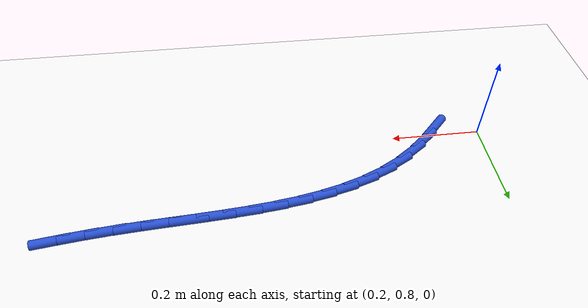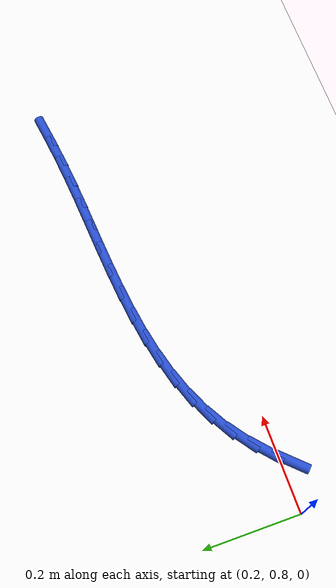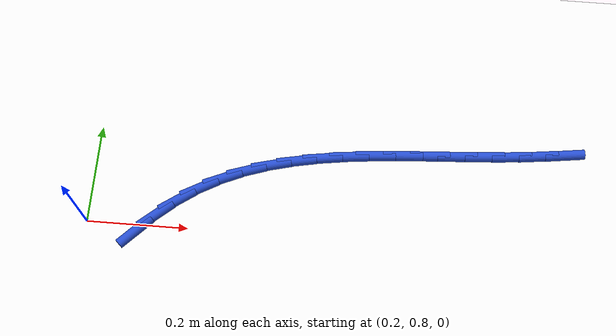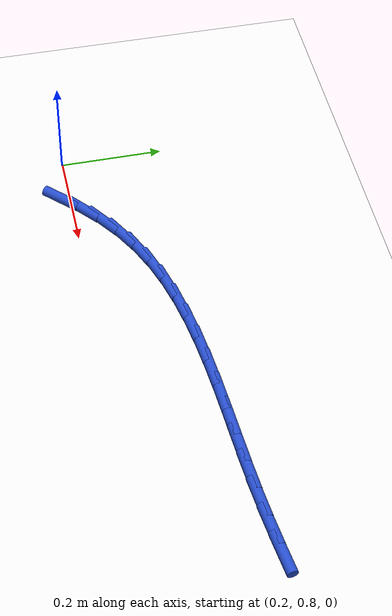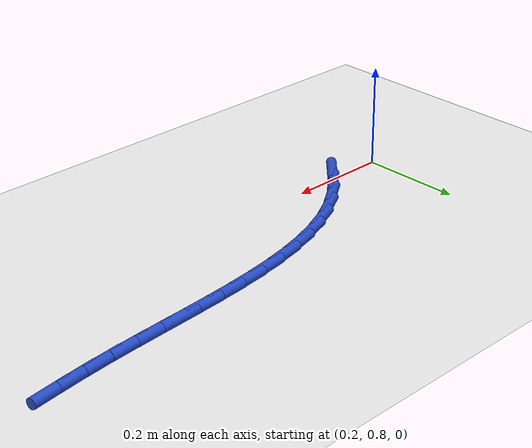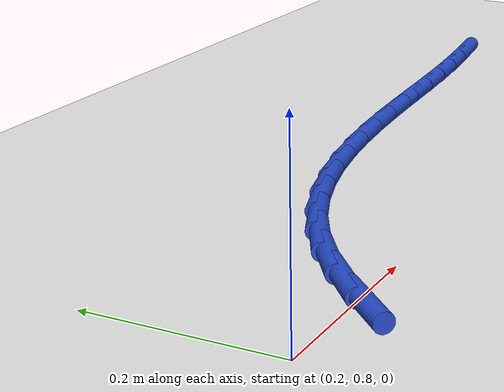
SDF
<sdf version="1.6">
 <world name="default">
  <model name="ground_plane">
   <static>1</static>
   <link name="link">
    <collision name="collision">
     <geometry><plane><normal>0 0 1</normal><size>100 100</size></plane></geometry>
     <surface><friction><ode><mu>100</mu><mu2>50</mu2></ode></friction></surface>
    </collision>
    <visual name="visual">
     <cast_shadows>0</cast_shadows>
     <geometry><plane><normal>0 0 1</normal><size>100 100</size></plane></geometry>
     <material>
      <script><uri>file://media/materials/scripts/gazebo.material</uri><name>Gazebo/WhiteGlow</name></script>
     </material>
    </visual>
   </link>
  </model>
  <model name="line">
   <link name="link_16">
    <pose>0.299323625582024 0.7838073324594245 0.01 0 1.57 0.8024193321833599</pose>
    <collision name="collision">
     <geometry><cylinder><radius>0.01</radius><length>0.08</length></cylinder></geometry>
    </collision>
    <visual name="visual">
     <material>
      <script><name>Gazebo/Blue</name><uri>file://media/materials/scripts/gazebo.material</uri></script>
     </material>
     <geometry><cylinder><radius>0.01</radius><length>0.08</length></cylinder></geometry>
    </visual>
   </link>
   <link name="link_17">
    <pose>0.3349986166947402 0.8207179345346696 0.01 0 1.57 0.7150534925548987</pose>
    <collision name="collision">
     <geometry><cylinder><radius>0.01</radius><length>0.08</length></cylinder></geometry>
    </collision>
    <visual name="visual">
     <material>
      <script><name>Gazebo/Blue</name><uri>file://media/materials/scripts/gazebo.material</uri></script>
     </material>
     <geometry><cylinder><radius>0.01</radius><length>0.08</length></cylinder></geometry>
    </visual>
   </link>
   <link name="link_18">
    <pose>0.37311906047748816 0.8538199756840446 0.01 0 1.57 0.6165033880333615</pose>
    <collision name="collision">
     <geometry><cylinder><radius>0.01</radius><length>0.08</length></cylinder></geometry>
    </collision>
    <visual name="visual">
     <material>
      <script><name>Gazebo/Blue</name><uri>file://media/materials/scripts/gazebo.material</uri></script>
     </material>
     <geometry><cylinder><radius>0.01</radius><length>0.08</length></cylinder></geometry>
    </visual>
   </link>
   <link name="link_19">
    <pose>0.41379451248282906 0.8826443668208552 0.01 0 1.57 0.5097273781721162</pose>
    <collision name="collision">
     <geometry><cylinder><radius>0.01</radius><length>0.08</length></cylinder></geometry>
    </collision>
    <visual name="visual">
     <material>
      <script><name>Gazebo/Blue</name><uri>file://media/materials/scripts/gazebo.material</uri></script>
     </material>
     <geometry><cylinder><radius>0.01</radius><length>0.08</length></cylinder></geometry>
    </visual>
   </link>
   <link name="link_20">
    <pose>0.4570848592107376 0.9068437074329452 0.01 0 1.57 0.4100828563643528</pose>
    <collision name="collision">
     <geometry><cylinder><radius>0.01</radius><length>0.08</length></cylinder></geometry>
    </collision>
    <visual name="visual">
     <material>
      <script><name>Gazebo/Blue</name><uri>file://media/materials/scripts/gazebo.material</uri></script>
     </material>
     <geometry><cylinder><radius>0.01</radius><length>0.08</length></cylinder></geometry>
    </visual>
   </link>
   <link name="link_21">
    <pose>0.5027880837160641 0.9267122572622769 0.01 0 1.57 0.32363220275786153</pose>
    <collision name="collision">
     <geometry><cylinder><radius>0.01</radius><length>0.08</length></cylinder></geometry>
    </collision>
    <visual name="visual">
     <material>
      <script><name>Gazebo/Blue</name><uri>file://media/materials/scripts/gazebo.material</uri></script>
     </material>
     <geometry><cylinder><radius>0.01</radius><length>0.08</length></cylinder></geometry>
    </visual>
   </link>
   <link name="link_22">
    <pose>0.550616156344528 0.9427550061417145 0.01 0 1.57 0.25076629282586843</pose>
    <collision name="collision">
     <geometry><cylinder><radius>0.01</radius><length>0.08</length></cylinder></geometry>
    </collision>
    <visual name="visual">
     <material>
      <script><name>Gazebo/Blue</name><uri>file://media/materials/scripts/gazebo.material</uri></script>
     </material>
     <geometry><cylinder><radius>0.01</radius><length>0.08</length></cylinder></geometry>
    </visual>
   </link>
   <link name="link_23">
    <pose>0.6002809964129442 0.9554770689243158 0.01 0 1.57 0.191075220446858</pose>
    <collision name="collision">
     <geometry><cylinder><radius>0.01</radius><length>0.08</length></cylinder></geometry>
    </collision>
    <visual name="visual">
     <material>
      <script><name>Gazebo/Blue</name><uri>file://media/materials/scripts/gazebo.material</uri></script>
     </material>
     <geometry><cylinder><radius>0.01</radius><length>0.08</length></cylinder></geometry>
    </visual>
   </link>
   <link name="link_24">
    <pose>0.6514945232381278 0.9653835604631394 0.01 0 1.57 0.14375910972457667</pose>
    <collision name="collision">
     <geometry><cylinder><radius>0.01</radius><length>0.08</length></cylinder></geometry>
    </collision>
    <visual name="visual">
     <material>
      <script><name>Gazebo/Blue</name><uri>file://media/materials/scripts/gazebo.material</uri></script>
     </material>
     <geometry><cylinder><radius>0.01</radius><length>0.08</length></cylinder></geometry>
    </visual>
   </link>
   <link name="link_25">
    <pose>0.7039686561368935 0.9729795956112431 0.01 0 1.57 0.10792430526535217</pose>
    <collision name="collision">
     <geometry><cylinder><radius>0.01</radius><length>0.08</length></cylinder></geometry>
    </collision>
    <visual name="visual">
     <material>
      <script><name>Gazebo/Blue</name><uri>file://media/materials/scripts/gazebo.material</uri></script>
     </material>
     <geometry><cylinder><radius>0.01</radius><length>0.08</length></cylinder></geometry>
    </visual>
   </link>
   <link name="link_26">
    <pose>0.7574153144260567 0.9787702892216857 0.01 0 1.57 0.0827658863774594</pose>
    <collision name="collision">
     <geometry><cylinder><radius>0.01</radius><length>0.08</length></cylinder></geometry>
    </collision>
    <visual name="visual">
     <material>
      <script><name>Gazebo/Blue</name><uri>file://media/materials/scripts/gazebo.material</uri></script>
     </material>
     <geometry><cylinder><radius>0.01</radius><length>0.08</length></cylinder></geometry>
    </visual>
   </link>
   <link name="link_27">
    <pose>0.8115464174224319 0.9832607561475252 0.01 0 1.57 0.06766705732779447</pose>
    <collision name="collision">
     <geometry><cylinder><radius>0.01</radius><length>0.08</length></cylinder></geometry>
    </collision>
    <visual name="visual">
     <material>
      <script><name>Gazebo/Blue</name><uri>file://media/materials/scripts/gazebo.material</uri></script>
     </material>
     <geometry><cylinder><radius>0.01</radius><length>0.08</length></cylinder></geometry>
    </visual>
   </link>
   <link name="link_28">
    <pose>0.8660738844428348 0.9869561112418198 0.01 0 1.57 0.06224786152688509</pose>
    <collision name="collision">
     <geometry><cylinder><radius>0.01</radius><length>0.08</length></cylinder></geometry>
    </collision>
    <visual name="visual">
     <material>
      <script><name>Gazebo/Blue</name><uri>file://media/materials/scripts/gazebo.material</uri></script>
     </material>
     <geometry><cylinder><radius>0.01</radius><length>0.08</length></cylinder></geometry>
    </visual>
   </link>
   <link name="link_29">
    <pose>0.92070963480408 0.9903614693576281 0.01 0 1.57 0.06638678600840407</pose>
    <collision name="collision">
     <geometry><cylinder><radius>0.01</radius><length>0.08</length></cylinder></geometry>
    </collision>
    <visual name="visual">
     <material>
      <script><name>Gazebo/Blue</name><uri>file://media/materials/scripts/gazebo.material</uri></script>
     </material>
     <geometry><cylinder><radius>0.01</radius><length>0.08</length></cylinder></geometry>
    </visual>
   </link>
   <link name="link_30">
    <pose>0.9751655878229826 0.9939819453480081 0.01 0 1.57 0.08022867136884439</pose>
    <collision name="collision">
     <geometry><cylinder><radius>0.01</radius><length>0.08</length></cylinder></geometry>
    </collision>
    <visual name="visual">
     <material>
      <script><name>Gazebo/Blue</name><uri>file://media/materials/scripts/gazebo.material</uri></script>
     </material>
     <geometry><cylinder><radius>0.01</radius><length>0.08</length></cylinder></geometry>
    </visual>
   </link>
   <link name="link_31">
    <pose>1.0291536628163571 0.998322654066018 0.01 0 1.57 0.10244471837668626</pose>
    <collision name="collision">
     <geometry><cylinder><radius>0.01</radius><length>0.08</length></cylinder></geometry>
    </collision>
    <visual name="visual">
     <material>
      <script><name>Gazebo/Blue</name><uri>file://media/materials/scripts/gazebo.material</uri></script>
     </material>
     <geometry><cylinder><radius>0.01</radius><length>0.08</length></cylinder></geometry>
    </visual>
   </link>
   <link name="link_32">
    <pose>1.0824295440069132 1.0037996603782384 0.01 0 1.57 0.12221266401720902</pose>
    <collision name="collision">
     <geometry><cylinder><radius>0.01</radius><length>0.08</length></cylinder></geometry>
    </collision>
    <visual name="visual">
     <material>
      <script><name>Gazebo/Blue</name><uri>file://media/materials/scripts/gazebo.material</uri></script>
     </material>
     <geometry><cylinder><radius>0.01</radius><length>0.08</length></cylinder></geometry>
    </visual>
   </link>
   <link name="link_33">
    <pose>1.135028515628162 1.0102601172188883 0.01 0 1.57 0.13490801925859391</pose>
    <collision name="collision">
     <geometry><cylinder><radius>0.01</radius><length>0.08</length></cylinder></geometry>
    </collision>
    <visual name="visual">
     <material>
      <script><name>Gazebo/Blue</name><uri>file://media/materials/scripts/gazebo.material</uri></script>
     </material>
     <geometry><cylinder><radius>0.01</radius><length>0.08</length></cylinder></geometry>
    </visual>
   </link>
  </model>
 </world>
</sdf>
